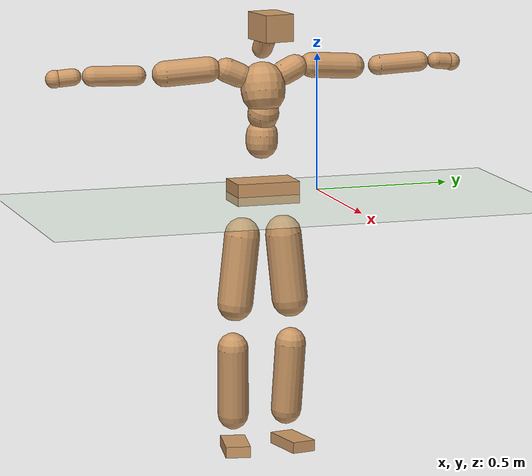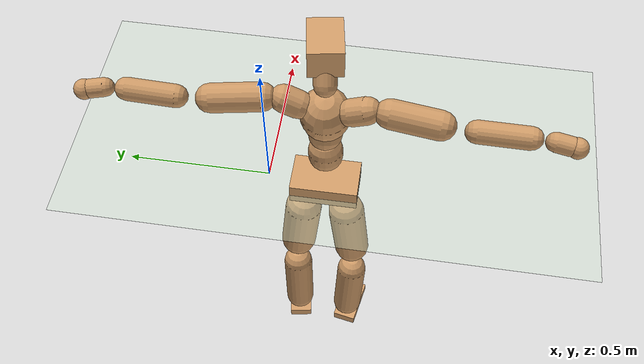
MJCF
<mujoco model="humanoid">
  <compiler coordinate="local" angle="radian"/>
  <default>
    <joint damping="0.0" armature="0.01" stiffness="0.0" limited="true"/>
    <geom conaffinity="1" condim="3" contype="7" margin="0.001" rgba="0.8 0.6 .4 1"/>
  </default>
  <asset>
    <texture type="skybox" builtin="gradient" rgb1=".4 .5 .6" rgb2="0 0 0" width="100" height="100"/>
    <texture builtin="flat" height="1278" mark="cross" markrgb="1 1 1" name="texgeom" random="0.01" rgb1="0.8 0.6 0.4" rgb2="0.8 0.6 0.4" type="cube" width="127"/>
    <texture builtin="checker" height="100" name="texplane" rgb1="0 0 0" rgb2="0.8 0.8 0.8" type="2d" width="100"/>
    <material name="MatPlane" reflectance="0.5" shininess="1" specular="1" texrepeat="60 60" texture="texplane"/>
    <material name="geom" texture="texgeom" texuniform="true"/>
  </asset>
  <worldbody>
    <light cutoff="100" diffuse="1 1 1" dir="-0 0 -1.3" directional="true" exponent="1" pos="0 0 1.3" specular=".1 .1 .1"/>
    <geom conaffinity="1" condim="3" name="floor" pos="0 0 0" rgba="0.8 0.9 0.8 1" size="100 100 .2" type="plane" material="MatPlane"/>
    <body name="Pelvis" pos="0.0002 -0.2029 0.0186">
      <freejoint name="Pelvis"/>
      <geom type="box" contype="1" conaffinity="1" density="500" pos="-0.0073 -0.0000 -0.0127" size="0.0707 0.1171 0.0395" quat="1.0000 0.0000 0.0000 0.0028" name="Pelvis"/>
      <body name="L_Hip" pos="-0.0154 0.0713 -0.092">
        <joint name="L_Hip_x" type="hinge" pos="0 0 0" axis="1 0 0" stiffness="800" damping="80" armature="0.02" range="-180.0000 180.0000"/>
        <joint name="L_Hip_y" type="hinge" pos="0 0 0" axis="0 1 0" stiffness="800" damping="80" armature="0.02" range="-180.0000 180.0000"/>
        <joint name="L_Hip_z" type="hinge" pos="0 0 0" axis="0 0 1" stiffness="800" damping="80" armature="0.02" range="-180.0000 180.0000"/>
        <geom type="capsule" contype="1" conaffinity="1" density="500" fromto="0.0009 0.0082 -0.0822 0.0038 0.0329 -0.3286" size="0.0656" name="L_Hip"/>
        <body name="L_Knee" pos="0.0047 0.0411 -0.4108">
          <joint name="L_Knee_x" type="hinge" pos="0 0 0" axis="1 0 0" stiffness="800" damping="80" armature="0.02" range="-180.0000 180.0000"/>
          <joint name="L_Knee_y" type="hinge" pos="0 0 0" axis="0 1 0" stiffness="800" damping="80" armature="0.02" range="-180.0000 180.0000"/>
          <joint name="L_Knee_z" type="hinge" pos="0 0 0" axis="0 0 1" stiffness="800" damping="80" armature="0.02" range="-180.0000 180.0000"/>
          <geom type="capsule" contype="1" conaffinity="1" density="500" fromto="-0.0094 -0.0024 -0.0849 -0.0375 -0.0098 -0.3398" size="0.056" name="L_Knee"/>
          <body name="L_Ankle" pos="-0.0469 -0.0122 -0.4247">
            <joint name="L_Ankle_x" type="hinge" pos="0 0 0" axis="1 0 0" stiffness="800" damping="80" armature="0.02" range="-180.0000 180.0000"/>
            <joint name="L_Ankle_y" type="hinge" pos="0 0 0" axis="0 1 0" stiffness="800" damping="80" armature="0.02" range="-180.0000 180.0000"/>
            <joint name="L_Ankle_z" type="hinge" pos="0 0 0" axis="0 0 1" stiffness="800" damping="80" armature="0.02" range="-180.0000 180.0000"/>
            <geom type="box" contype="1" conaffinity="1" density="500" pos="0.0612 0.0111 -0.0288" size="0.088 0.0442 0.0205" quat="0.9960 0.0000 0.0000 0.0893" name="L_Ankle"/>
            <body name="L_Toe" pos="0.1225 0.0221 -0.0577">
              <joint name="L_Toe_x" type="hinge" pos="0 0 0" axis="1 0 0" stiffness="500" damping="50" armature="0.02" range="-180.0000 180.0000"/>
              <joint name="L_Toe_y" type="hinge" pos="0 0 0" axis="0 1 0" stiffness="500" damping="50" armature="0.02" range="-180.0000 180.0000"/>
              <joint name="L_Toe_z" type="hinge" pos="0 0 0" axis="0 0 1" stiffness="500" damping="50" armature="0.02" range="-180.0000 180.0000"/>
              <geom type="box" contype="1" conaffinity="1" density="500" pos="0.0000 0.0000 0.0294" size="0.0008 0.0022 0.0011" quat="0.9954 0.0000 0.0000 0.0957" name="L_Toe"/>
            </body>
          </body>
        </body>
      </body>
      <body name="R_Hip" pos="-0.0123 -0.0685 -0.0895">
        <joint name="R_Hip_x" type="hinge" pos="0 0 0" axis="1 0 0" stiffness="800" damping="80" armature="0.02" range="-180.0000 180.0000"/>
        <joint name="R_Hip_y" type="hinge" pos="0 0 0" axis="0 1 0" stiffness="800" damping="80" armature="0.02" range="-180.0000 180.0000"/>
        <joint name="R_Hip_z" type="hinge" pos="0 0 0" axis="0 0 1" stiffness="800" damping="80" armature="0.02" range="-180.0000 180.0000"/>
        <geom type="capsule" contype="1" conaffinity="1" density="500" fromto="0.0001 -0.0091 -0.0839 0.0002 -0.0362 -0.3356" size="0.0647" name="R_Hip"/>
        <body name="R_Knee" pos="0.0003 -0.0453 -0.4195">
          <joint name="R_Knee_x" type="hinge" pos="0 0 0" axis="1 0 0" stiffness="800" damping="80" armature="0.02" range="-180.0000 180.0000"/>
          <joint name="R_Knee_y" type="hinge" pos="0 0 0" axis="0 1 0" stiffness="800" damping="80" armature="0.02" range="-180.0000 180.0000"/>
          <joint name="R_Knee_z" type="hinge" pos="0 0 0" axis="0 0 1" stiffness="800" damping="80" armature="0.02" range="-180.0000 180.0000"/>
          <geom type="capsule" contype="1" conaffinity="1" density="500" fromto="-0.0091 0.0030 -0.0847 -0.0362 0.0121 -0.3388" size="0.0563" name="R_Knee"/>
          <body name="R_Ankle" pos="-0.0453 0.0152 -0.4235">
            <joint name="R_Ankle_x" type="hinge" pos="0 0 0" axis="1 0 0" stiffness="800" damping="80" armature="0.02" range="-180.0000 180.0000"/>
            <joint name="R_Ankle_y" type="hinge" pos="0 0 0" axis="0 1 0" stiffness="800" damping="80" armature="0.02" range="-180.0000 180.0000"/>
            <joint name="R_Ankle_z" type="hinge" pos="0 0 0" axis="0 0 1" stiffness="800" damping="80" armature="0.02" range="-180.0000 180.0000"/>
            <geom type="box" contype="1" conaffinity="1" density="500" pos="0.0624 -0.0113 -0.0248" size="0.0882 0.0451 0.0203" quat="0.9960 0.0000 0.0000 -0.0896" name="R_Ankle"/>
            <body name="R_Toe" pos="0.1248 -0.0227 -0.0495">
              <joint name="R_Toe_x" type="hinge" pos="0 0 0" axis="1 0 0" stiffness="500" damping="50" armature="0.02" range="-180.0000 180.0000"/>
              <joint name="R_Toe_y" type="hinge" pos="0 0 0" axis="0 1 0" stiffness="500" damping="50" armature="0.02" range="-180.0000 180.0000"/>
              <joint name="R_Toe_z" type="hinge" pos="0 0 0" axis="0 0 1" stiffness="500" damping="50" armature="0.02" range="-180.0000 180.0000"/>
              <geom type="box" contype="1" conaffinity="1" density="500" pos="0.0000 0.0000 0.0269" size="0.0008 0.0022 0.0011" quat="0.9967 0.0000 0.0000 -0.0806" name="R_Toe"/>
            </body>
          </body>
        </body>
      </body>
      <body name="Torso" pos="-0.0161 -0.003 0.1054">
        <joint name="Torso_x" type="hinge" pos="0 0 0" axis="1 0 0" stiffness="1000" damping="100" armature="0.02" range="-180.0000 180.0000"/>
        <joint name="Torso_y" type="hinge" pos="0 0 0" axis="0 1 0" stiffness="1000" damping="100" armature="0.02" range="-180.0000 180.0000"/>
        <joint name="Torso_z" type="hinge" pos="0 0 0" axis="0 0 1" stiffness="1000" damping="100" armature="0.02" range="-180.0000 180.0000"/>
        <geom type="capsule" contype="1" conaffinity="1" density="500" fromto="-0.0022 0.0022 0.0847 -0.0014 0.0015 0.0564" size="0.058" name="Torso"/>
        <body name="Spine" pos="-0.0036 0.0036 0.1411">
          <joint name="Spine_x" type="hinge" pos="0 0 0" axis="1 0 0" stiffness="1000" damping="100" armature="0.02" range="-180.0000 180.0000"/>
          <joint name="Spine_y" type="hinge" pos="0 0 0" axis="0 1 0" stiffness="1000" damping="100" armature="0.02" range="-180.0000 180.0000"/>
          <joint name="Spine_z" type="hinge" pos="0 0 0" axis="0 0 1" stiffness="1000" damping="100" armature="0.02" range="-180.0000 180.0000"/>
          <geom type="capsule" contype="1" conaffinity="1" density="500" fromto="0.0145 0.0008 0.0288 0.0096 0.0006 0.0192" size="0.0567" name="Spine"/>
          <body name="Chest" pos="0.0241 0.0014 0.048">
            <joint name="Chest_x" type="hinge" pos="0 0 0" axis="1 0 0" stiffness="1000" damping="100" armature="0.02" range="-180.0000 180.0000"/>
            <joint name="Chest_y" type="hinge" pos="0 0 0" axis="0 1 0" stiffness="1000" damping="100" armature="0.02" range="-180.0000 180.0000"/>
            <joint name="Chest_z" type="hinge" pos="0 0 0" axis="0 0 1" stiffness="1000" damping="100" armature="0.02" range="-180.0000 180.0000"/>
            <geom type="capsule" contype="1" conaffinity="1" density="500" fromto="-0.0193 -0.0008 0.0831 -0.0129 -0.0006 0.0554" size="0.0802" name="Chest"/>
            <body name="Neck" pos="-0.0327 -0.0024 0.1989">
              <joint name="Neck_x" type="hinge" pos="0 0 0" axis="1 0 0" stiffness="500" damping="50" armature="0.02" range="-180.0000 180.0000"/>
              <joint name="Neck_y" type="hinge" pos="0 0 0" axis="0 1 0" stiffness="500" damping="50" armature="0.02" range="-180.0000 180.0000"/>
              <joint name="Neck_z" type="hinge" pos="0 0 0" axis="0 0 1" stiffness="500" damping="50" armature="0.02" range="-180.0000 180.0000"/>
              <geom type="capsule" contype="1" conaffinity="1" density="500" fromto="0.0103 0.0014 0.0132 0.0413 0.0057 0.0527" size="0.037" name="Neck"/>
              <body name="Head" pos="0.0516 0.0071 0.0659">
                <joint name="Head_x" type="hinge" pos="0 0 0" axis="1 0 0" stiffness="500" damping="50" armature="0.02" range="-180.0000 180.0000"/>
                <joint name="Head_y" type="hinge" pos="0 0 0" axis="0 1 0" stiffness="500" damping="50" armature="0.02" range="-180.0000 180.0000"/>
                <joint name="Head_z" type="hinge" pos="0 0 0" axis="0 0 1" stiffness="500" damping="50" armature="0.02" range="-180.0000 180.0000"/>
                <geom type="box" contype="1" conaffinity="1" density="500" pos="0.0268 0.0045 0.0340" size="0.072 0.055 0.0492" quat="0.9965 0.0000 0.0000 0.0838" name="Head"/>
              </body>
            </body>
            <body name="L_Thorax" pos="-0.0286 0.0646 0.1092">
              <joint name="L_Thorax_x" type="hinge" pos="0 0 0" axis="1 0 0" stiffness="500" damping="50" armature="0.02" range="-180.0000 180.0000"/>
              <joint name="L_Thorax_y" type="hinge" pos="0 0 0" axis="0 1 0" stiffness="500" damping="50" armature="0.02" range="-180.0000 180.0000"/>
              <joint name="L_Thorax_z" type="hinge" pos="0 0 0" axis="0 0 1" stiffness="500" damping="50" armature="0.02" range="-180.0000 180.0000"/>
              <geom type="capsule" contype="1" conaffinity="1" density="500" fromto="-0.0003 0.0149 0.0073 -0.0013 0.0598 0.0292" size="0.0448" name="L_Thorax"/>
              <body name="L_Shoulder" pos="-0.0017 0.0747 0.0364">
                <joint name="L_Shoulder_x" type="hinge" pos="0 0 0" axis="1 0 0" stiffness="500" damping="50" armature="0.02" range="-720.0000 720.0000"/>
                <joint name="L_Shoulder_y" type="hinge" pos="0 0 0" axis="0 1 0" stiffness="500" damping="50" armature="0.02" range="-720.0000 720.0000"/>
                <joint name="L_Shoulder_z" type="hinge" pos="0 0 0" axis="0 0 1" stiffness="500" damping="50" armature="0.02" range="-720.0000 720.0000"/>
                <geom type="capsule" contype="1" conaffinity="1" density="500" fromto="-0.0058 0.0525 -0.0044 -0.0231 0.2102 -0.0174" size="0.0462" name="L_Shoulder"/>
                <body name="L_Elbow" pos="-0.0288 0.2627 -0.0218">
                  <joint name="L_Elbow_x" type="hinge" pos="0 0 0" axis="1 0 0" stiffness="500" damping="50" armature="0.02" range="-720.0000 720.0000"/>
                  <joint name="L_Elbow_y" type="hinge" pos="0 0 0" axis="0 1 0" stiffness="500" damping="50" armature="0.02" range="-720.0000 720.0000"/>
                  <joint name="L_Elbow_z" type="hinge" pos="0 0 0" axis="0 0 1" stiffness="500" damping="50" armature="0.02" range="-720.0000 720.0000"/>
                  <geom type="capsule" contype="1" conaffinity="1" density="500" fromto="-0.0001 0.0520 0.0023 -0.0002 0.2079 0.0090" size="0.0365" name="L_Elbow"/>
                  <body name="L_Wrist" pos="-0.0003 0.2599 0.0113">
                    <joint name="L_Wrist_x" type="hinge" pos="0 0 0" axis="1 0 0" stiffness="300" damping="30" armature="0.02" range="-180.0000 180.0000"/>
                    <joint name="L_Wrist_y" type="hinge" pos="0 0 0" axis="0 1 0" stiffness="300" damping="30" armature="0.02" range="-180.0000 180.0000"/>
                    <joint name="L_Wrist_z" type="hinge" pos="0 0 0" axis="0 0 1" stiffness="300" damping="30" armature="0.02" range="-180.0000 180.0000"/>
                    <geom type="capsule" contype="1" conaffinity="1" density="500" fromto="-0.0028 0.0162 -0.0021 -0.0112 0.0648 -0.0083" size="0.0299" name="L_Wrist"/>
                    <body name="L_Hand" pos="-0.014 0.081 -0.0104">
                      <joint name="L_Hand_x" type="hinge" pos="0 0 0" axis="1 0 0" stiffness="300" damping="30" armature="0.02" range="-180.0000 180.0000"/>
                      <joint name="L_Hand_y" type="hinge" pos="0 0 0" axis="0 1 0" stiffness="300" damping="30" armature="0.02" range="-180.0000 180.0000"/>
                      <joint name="L_Hand_z" type="hinge" pos="0 0 0" axis="0 0 1" stiffness="300" damping="30" armature="0.02" range="-180.0000 180.0000"/>
                      <geom type="sphere" contype="1" conaffinity="1" density="500" size="0.0325" pos="0.0000 0.0000 0.0000" name="L_Hand"/>
                    </body>
                  </body>
                </body>
              </body>
            </body>
            <body name="R_Thorax" pos="-0.035 -0.0663 0.1072">
              <joint name="R_Thorax_x" type="hinge" pos="0 0 0" axis="1 0 0" stiffness="500" damping="50" armature="0.02" range="-180.0000 180.0000"/>
              <joint name="R_Thorax_y" type="hinge" pos="0 0 0" axis="0 1 0" stiffness="500" damping="50" armature="0.02" range="-180.0000 180.0000"/>
              <joint name="R_Thorax_z" type="hinge" pos="0 0 0" axis="0 0 1" stiffness="500" damping="50" armature="0.02" range="-180.0000 180.0000"/>
              <geom type="capsule" contype="1" conaffinity="1" density="500" fromto="-0.0009 -0.0163 0.0072 -0.0035 -0.0651 0.0288" size="0.0439" name="R_Thorax"/>
              <body name="R_Shoulder" pos="-0.0043 -0.0814 0.036">
                <joint name="R_Shoulder_x" type="hinge" pos="0 0 0" axis="1 0 0" stiffness="500" damping="50" armature="0.02" range="-720.0000 720.0000"/>
                <joint name="R_Shoulder_y" type="hinge" pos="0 0 0" axis="0 1 0" stiffness="500" damping="50" armature="0.02" range="-720.0000 720.0000"/>
                <joint name="R_Shoulder_z" type="hinge" pos="0 0 0" axis="0 0 1" stiffness="500" damping="50" armature="0.02" range="-720.0000 720.0000"/>
                <geom type="capsule" contype="1" conaffinity="1" density="500" fromto="-0.0043 -0.0522 -0.0035 -0.0174 -0.2086 -0.0142" size="0.0469" name="R_Shoulder"/>
                <body name="R_Elbow" pos="-0.0217 -0.2608 -0.0177">
                  <joint name="R_Elbow_x" type="hinge" pos="0 0 0" axis="1 0 0" stiffness="500" damping="50" armature="0.02" range="-720.0000 720.0000"/>
                  <joint name="R_Elbow_y" type="hinge" pos="0 0 0" axis="0 1 0" stiffness="500" damping="50" armature="0.02" range="-720.0000 720.0000"/>
                  <joint name="R_Elbow_z" type="hinge" pos="0 0 0" axis="0 0 1" stiffness="500" damping="50" armature="0.02" range="-720.0000 720.0000"/>
                  <geom type="capsule" contype="1" conaffinity="1" density="500" fromto="-0.0012 -0.0535 0.0013 -0.0050 -0.2142 0.0052" size="0.0362" name="R_Elbow"/>
                  <body name="R_Wrist" pos="-0.0062 -0.2677 0.0066">
                    <joint name="R_Wrist_x" type="hinge" pos="0 0 0" axis="1 0 0" stiffness="300" damping="30" armature="0.02" range="-180.0000 180.0000"/>
                    <joint name="R_Wrist_y" type="hinge" pos="0 0 0" axis="0 1 0" stiffness="300" damping="30" armature="0.02" range="-180.0000 180.0000"/>
                    <joint name="R_Wrist_z" type="hinge" pos="0 0 0" axis="0 0 1" stiffness="300" damping="30" armature="0.02" range="-180.0000 180.0000"/>
                    <geom type="capsule" contype="1" conaffinity="1" density="500" fromto="-0.0022 -0.0164 -0.0015 -0.0086 -0.0656 -0.0059" size="0.0306" name="R_Wrist"/>
                    <body name="R_Hand" pos="-0.0108 -0.0819 -0.0074">
                      <joint name="R_Hand_x" type="hinge" pos="0 0 0" axis="1 0 0" stiffness="300" damping="30" armature="0.02" range="-180.0000 180.0000"/>
                      <joint name="R_Hand_y" type="hinge" pos="0 0 0" axis="0 1 0" stiffness="300" damping="30" armature="0.02" range="-180.0000 180.0000"/>
                      <joint name="R_Hand_z" type="hinge" pos="0 0 0" axis="0 0 1" stiffness="300" damping="30" armature="0.02" range="-180.0000 180.0000"/>
                      <geom type="sphere" contype="1" conaffinity="1" density="500" size="0.0327" pos="0.0000 0.0000 0.0000" name="R_Hand"/>
                    </body>
                  </body>
                </body>
              </body>
            </body>
          </body>
        </body>
      </body>
    </body>
  </worldbody>
  <actuator>
    <motor name="L_Hip_x" joint="L_Hip_x" gear="500"/>
    <motor name="L_Hip_y" joint="L_Hip_y" gear="500"/>
    <motor name="L_Hip_z" joint="L_Hip_z" gear="500"/>
    <motor name="L_Knee_x" joint="L_Knee_x" gear="500"/>
    <motor name="L_Knee_y" joint="L_Knee_y" gear="500"/>
    <motor name="L_Knee_z" joint="L_Knee_z" gear="500"/>
    <motor name="L_Ankle_x" joint="L_Ankle_x" gear="500"/>
    <motor name="L_Ankle_y" joint="L_Ankle_y" gear="500"/>
    <motor name="L_Ankle_z" joint="L_Ankle_z" gear="500"/>
    <motor name="L_Toe_x" joint="L_Toe_x" gear="500"/>
    <motor name="L_Toe_y" joint="L_Toe_y" gear="500"/>
    <motor name="L_Toe_z" joint="L_Toe_z" gear="500"/>
    <motor name="R_Hip_x" joint="R_Hip_x" gear="500"/>
    <motor name="R_Hip_y" joint="R_Hip_y" gear="500"/>
    <motor name="R_Hip_z" joint="R_Hip_z" gear="500"/>
    <motor name="R_Knee_x" joint="R_Knee_x" gear="500"/>
    <motor name="R_Knee_y" joint="R_Knee_y" gear="500"/>
    <motor name="R_Knee_z" joint="R_Knee_z" gear="500"/>
    <motor name="R_Ankle_x" joint="R_Ankle_x" gear="500"/>
    <motor name="R_Ankle_y" joint="R_Ankle_y" gear="500"/>
    <motor name="R_Ankle_z" joint="R_Ankle_z" gear="500"/>
    <motor name="R_Toe_x" joint="R_Toe_x" gear="500"/>
    <motor name="R_Toe_y" joint="R_Toe_y" gear="500"/>
    <motor name="R_Toe_z" joint="R_Toe_z" gear="500"/>
    <motor name="Torso_x" joint="Torso_x" gear="500"/>
    <motor name="Torso_y" joint="Torso_y" gear="500"/>
    <motor name="Torso_z" joint="Torso_z" gear="500"/>
    <motor name="Spine_x" joint="Spine_x" gear="500"/>
    <motor name="Spine_y" joint="Spine_y" gear="500"/>
    <motor name="Spine_z" joint="Spine_z" gear="500"/>
    <motor name="Chest_x" joint="Chest_x" gear="500"/>
    <motor name="Chest_y" joint="Chest_y" gear="500"/>
    <motor name="Chest_z" joint="Chest_z" gear="500"/>
    <motor name="Neck_x" joint="Neck_x" gear="500"/>
    <motor name="Neck_y" joint="Neck_y" gear="500"/>
    <motor name="Neck_z" joint="Neck_z" gear="500"/>
    <motor name="Head_x" joint="Head_x" gear="500"/>
    <motor name="Head_y" joint="Head_y" gear="500"/>
    <motor name="Head_z" joint="Head_z" gear="500"/>
    <motor name="L_Thorax_x" joint="L_Thorax_x" gear="500"/>
    <motor name="L_Thorax_y" joint="L_Thorax_y" gear="500"/>
    <motor name="L_Thorax_z" joint="L_Thorax_z" gear="500"/>
    <motor name="L_Shoulder_x" joint="L_Shoulder_x" gear="500"/>
    <motor name="L_Shoulder_y" joint="L_Shoulder_y" gear="500"/>
    <motor name="L_Shoulder_z" joint="L_Shoulder_z" gear="500"/>
    <motor name="L_Elbow_x" joint="L_Elbow_x" gear="500"/>
    <motor name="L_Elbow_y" joint="L_Elbow_y" gear="500"/>
    <motor name="L_Elbow_z" joint="L_Elbow_z" gear="500"/>
    <motor name="L_Wrist_x" joint="L_Wrist_x" gear="500"/>
    <motor name="L_Wrist_y" joint="L_Wrist_y" gear="500"/>
    <motor name="L_Wrist_z" joint="L_Wrist_z" gear="500"/>
    <motor name="L_Hand_x" joint="L_Hand_x" gear="500"/>
    <motor name="L_Hand_y" joint="L_Hand_y" gear="500"/>
    <motor name="L_Hand_z" joint="L_Hand_z" gear="500"/>
    <motor name="R_Thorax_x" joint="R_Thorax_x" gear="500"/>
    <motor name="R_Thorax_y" joint="R_Thorax_y" gear="500"/>
    <motor name="R_Thorax_z" joint="R_Thorax_z" gear="500"/>
    <motor name="R_Shoulder_x" joint="R_Shoulder_x" gear="500"/>
    <motor name="R_Shoulder_y" joint="R_Shoulder_y" gear="500"/>
    <motor name="R_Shoulder_z" joint="R_Shoulder_z" gear="500"/>
    <motor name="R_Elbow_x" joint="R_Elbow_x" gear="500"/>
    <motor name="R_Elbow_y" joint="R_Elbow_y" gear="500"/>
    <motor name="R_Elbow_z" joint="R_Elbow_z" gear="500"/>
    <motor name="R_Wrist_x" joint="R_Wrist_x" gear="500"/>
    <motor name="R_Wrist_y" joint="R_Wrist_y" gear="500"/>
    <motor name="R_Wrist_z" joint="R_Wrist_z" gear="500"/>
    <motor name="R_Hand_x" joint="R_Hand_x" gear="500"/>
    <motor name="R_Hand_y" joint="R_Hand_y" gear="500"/>
    <motor name="R_Hand_z" joint="R_Hand_z" gear="500"/>
  </actuator>
  <contact>
    <exclude body1="Torso" body2="Chest"/>
    <exclude body1="Head" body2="Chest"/>
    <exclude body1="R_Knee" body2="R_Toe"/>
    <exclude body1="R_Knee" body2="L_Ankle"/>
    <exclude body1="R_Knee" body2="L_Toe"/>
    <exclude body1="L_Knee" body2="L_Toe"/>
    <exclude body1="L_Knee" body2="R_Ankle"/>
    <exclude body1="L_Knee" body2="R_Toe"/>
    <exclude body1="L_Shoulder" body2="Chest"/>
    <exclude body1="R_Shoulder" body2="Chest"/>
  </contact>
  <sensor/>
  <size njmax="700" nconmax="700"/>
</mujoco>
